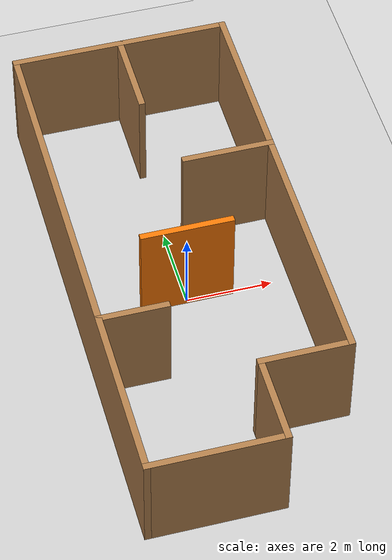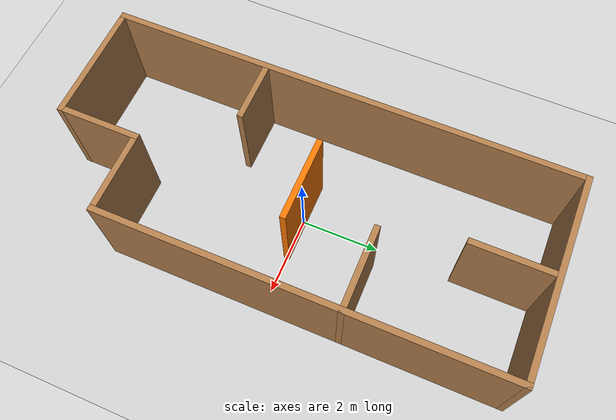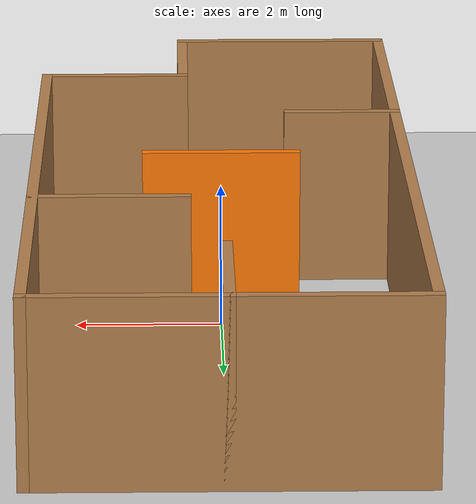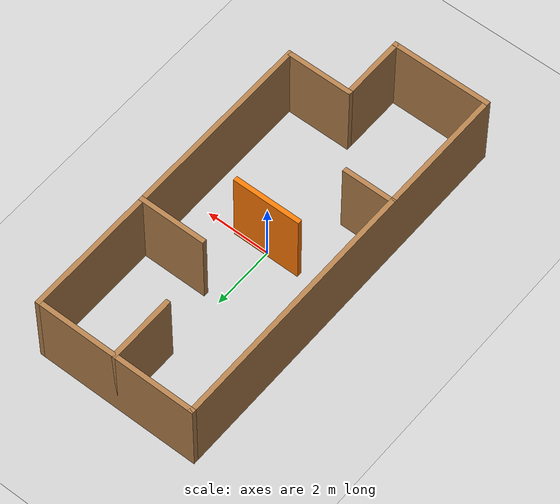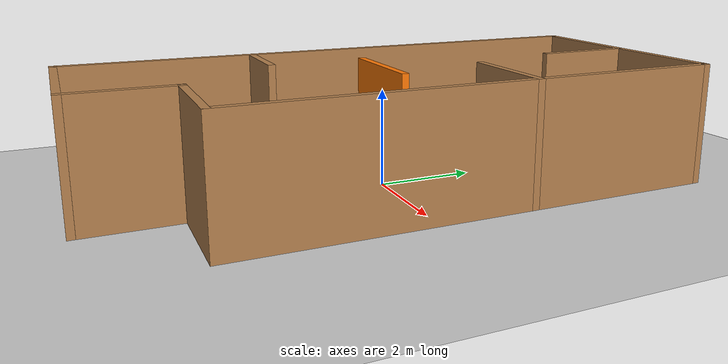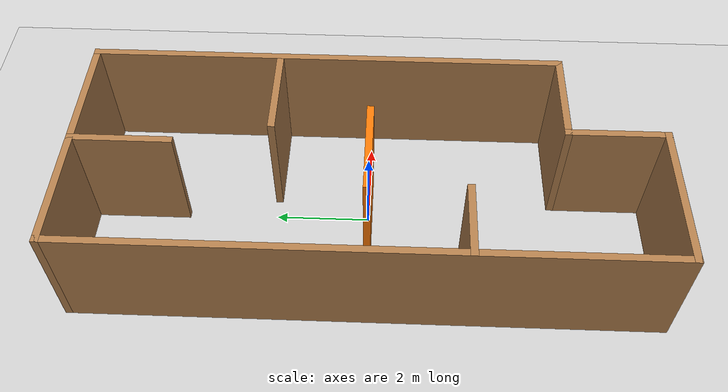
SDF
<sdf version="1.6">
 <world name="default">
  <light name="sun" type="directional">
   <pose>0 0 10 0 -0 0</pose>
   <diffuse>0.8 0.8 0.8 1</diffuse>
   <specular>0.1 0.1 0.1 1</specular>
   <attenuation>
    <range>1000</range>
    <constant>0.9</constant>
    <linear>0.01</linear>
    <quadratic>0.001</quadratic>
   </attenuation>
   <direction>-0.5 0.5 -1</direction>
  </light>
  <model name="ground_plane">
   <static>1</static>
   <link name="link">
    <collision name="collision">
     <geometry><plane><normal>0 0 1</normal><size>100 100</size></plane></geometry>
     <surface><friction><ode><mu>100</mu><mu2>50</mu2></ode></friction></surface>
    </collision>
    <visual name="visual">
     <cast_shadows>0</cast_shadows>
     <geometry><plane><normal>0 0 1</normal><size>100 100</size></plane></geometry>
     <material>
      <script><uri>file://media/materials/scripts/gazebo.material</uri><name>Gazebo/Grey</name></script>
     </material>
    </visual>
   </link>
  </model>
  <gravity>0 0 -9.8</gravity>
  <magnetic_field>6e-06 2.3e-05 -4.2e-05</magnetic_field>
  <atmosphere type="adiabatic"/>
  <physics name="default_physics" default="0" type="ode">
   <max_step_size>0.001</max_step_size>
   <real_time_factor>1</real_time_factor>
   <real_time_update_rate>1000</real_time_update_rate>
  </physics>
  <scene><ambient>0.4 0.4 0.4 1</ambient><background>0.7 0.7 0.7 1</background><shadows>1</shadows></scene>
  <spherical_coordinates>
   <surface_model>EARTH_WGS84</surface_model>
   <latitude_deg>0</latitude_deg>
   <longitude_deg>0</longitude_deg>
   <elevation>0</elevation>
   <heading_deg>0</heading_deg>
  </spherical_coordinates>
  <model name="lobby_stairs">
   <link name="Wall_1">
    <collision name="Wall_1_Collision">
     <geometry><box><size>10.15 0.15 2.5</size></box></geometry>
     <pose>0 0 1.25 0 -0 0</pose>
    </collision>
    <visual name="Wall_1_Visual">
     <pose>0 0 1.25 0 -0 0</pose>
     <geometry><box><size>10.15 0.15 2.5</size></box></geometry>
     <material>
      <script><uri>file://media/materials/scripts/gazebo.material</uri><name>Gazebo/Wood</name></script>
      <ambient>1 1 1 1</ambient>
     </material>
    </visual>
    <pose>2.5 1 0 0 -0 1.5708</pose>
   </link>
   <link name="Wall_10">
    <collision name="Wall_10_Collision">
     <geometry><box><size>2.15 0.15 2.5</size></box></geometry>
     <pose>0 0 1.25 0 -0 0</pose>
    </collision>
    <visual name="Wall_10_Visual">
     <pose>0 0 1.25 0 -0 0</pose>
     <geometry><box><size>2.15 0.15 2.5</size></box></geometry>
     <material>
      <script><uri>file://media/materials/scripts/gazebo.material</uri><name>Gazebo/Wood</name></script>
      <ambient>1 1 1 1</ambient>
     </material>
    </visual>
    <pose>1.5 2 0 0 -0 3.14159</pose>
   </link>
   <link name="Wall_12">
    <collision name="Wall_12_Collision">
     <geometry><box><size>2.15 0.15 2.5</size></box></geometry>
     <pose>0 0 1.25 0 -0 0</pose>
    </collision>
    <visual name="Wall_12_Visual">
     <pose>0 0 1.25 0 -0 0</pose>
     <geometry><box><size>2.15 0.15 2.5</size></box></geometry>
     <material>
      <script><uri>file://media/materials/scripts/gazebo.material</uri><name>Gazebo/Wood</name></script>
      <ambient>1 1 1 1</ambient>
     </material>
    </visual>
    <pose>0 5 0 0 0 -1.5708</pose>
   </link>
   <link name="Wall_14">
    <collision name="Wall_14_Collision">
     <geometry><box><size>2.15 0.15 2.5</size></box></geometry>
     <pose>0 0 1.25 0 -0 0</pose>
    </collision>
    <visual name="Wall_14_Visual">
     <pose>0 0 1.25 0 -0 0</pose>
     <geometry><box><size>2.15 0.15 2.5</size></box></geometry>
     <material>
      <script><uri>file://media/materials/scripts/gazebo.material</uri><name>Gazebo/Grey</name></script>
      <ambient>0.996078 0.47451 0.0196078 1</ambient>
     </material>
    </visual>
   </link>
   <link name="Wall_16">
    <collision name="Wall_16_Collision">
     <geometry><box><size>2.15 0.15 2.5</size></box></geometry>
     <pose>0 0 1.25 0 -0 0</pose>
    </collision>
    <visual name="Wall_16_Visual">
     <pose>0 0 1.25 0 -0 0</pose>
     <geometry><box><size>2.15 0.15 2.5</size></box></geometry>
     <material>
      <script><uri>file://media/materials/scripts/gazebo.material</uri><name>Gazebo/Wood</name></script>
      <ambient>1 1 1 1</ambient>
     </material>
    </visual>
    <pose>1.5 -4 0 0 -0 3.14159</pose>
   </link>
   <link name="Wall_17">
    <collision name="Wall_17_Collision">
     <geometry><box><size>2.15 0.15 2.5</size></box></geometry>
     <pose>0 0 1.25 0 -0 0</pose>
    </collision>
    <visual name="Wall_17_Visual">
     <pose>0 0 1.25 0 -0 0</pose>
     <geometry><box><size>2.15 0.15 2.5</size></box></geometry>
     <material>
      <script><uri>file://media/materials/scripts/gazebo.material</uri><name>Gazebo/Wood</name></script>
      <ambient>1 1 1 1</ambient>
     </material>
    </visual>
    <pose>0.5 -5 0 0 0 -1.5708</pose>
   </link>
   <link name="Wall_18">
    <collision name="Wall_18_Collision">
     <geometry><box><size>3.15 0.15 2.5</size></box></geometry>
     <pose>0 0 1.25 0 -0 0</pose>
    </collision>
    <visual name="Wall_18_Visual">
     <pose>0 0 1.25 0 -0 0</pose>
     <geometry><box><size>3.15 0.15 2.5</size></box></geometry>
     <material>
      <script><uri>file://media/materials/scripts/gazebo.material</uri><name>Gazebo/Wood</name></script>
      <ambient>1 1 1 1</ambient>
     </material>
    </visual>
    <pose>-1 -6 0 0 -0 3.14159</pose>
   </link>
   <link name="Wall_2">
    <collision name="Wall_2_Collision">
     <geometry><box><size>5.15 0.15 2.5</size></box></geometry>
     <pose>0 0 1.25 0 -0 0</pose>
    </collision>
    <visual name="Wall_2_Visual">
     <pose>0 0 1.25 0 -0 0</pose>
     <geometry><box><size>5.15 0.15 2.5</size></box></geometry>
     <material>
      <script><uri>file://media/materials/scripts/gazebo.material</uri><name>Gazebo/Wood</name></script>
      <ambient>1 1 1 1</ambient>
     </material>
    </visual>
    <pose>0 6 0 0 -0 3.14159</pose>
   </link>
   <link name="Wall_3">
    <collision name="Wall_3_Collision">
     <geometry><box><size>12.15 0.15 2.5</size></box></geometry>
     <pose>0 0 1.25 0 -0 0</pose>
    </collision>
    <visual name="Wall_3_Visual">
     <pose>0 0 1.25 0 -0 0</pose>
     <geometry><box><size>12.15 0.15 2.5</size></box></geometry>
     <material>
      <script><uri>file://media/materials/scripts/gazebo.material</uri><name>Gazebo/Wood</name></script>
      <ambient>1 1 1 1</ambient>
     </material>
    </visual>
    <pose>-2.5 0 0 0 0 -1.5708</pose>
   </link>
   <link name="Wall_8">
    <collision name="Wall_8_Collision">
     <geometry><box><size>1.65 0.15 2.5</size></box></geometry>
     <pose>0 0 1.25 0 -0 0</pose>
    </collision>
    <visual name="Wall_8_Visual">
     <pose>0 0 1.25 0 -0 0</pose>
     <geometry><box><size>1.65 0.15 2.5</size></box></geometry>
     <material>
      <script><uri>file://media/materials/scripts/gazebo.material</uri><name>Gazebo/Wood</name></script>
      <ambient>1 1 1 1</ambient>
     </material>
    </visual>
    <pose>-1.75 -2 0 0 -0 0</pose>
   </link>
   <static>1</static>
  </model>
 </world>
</sdf>
